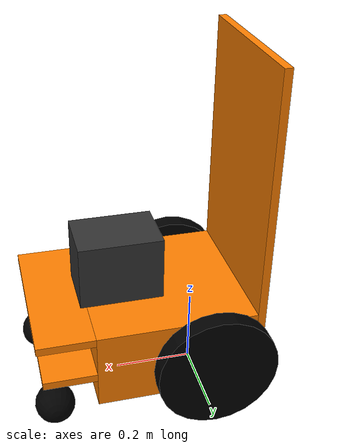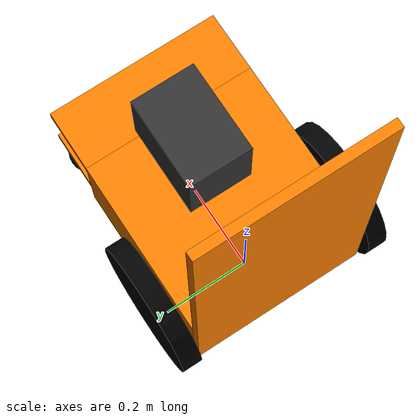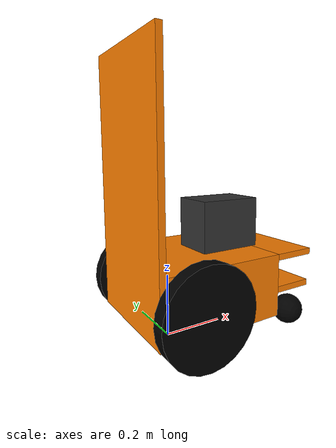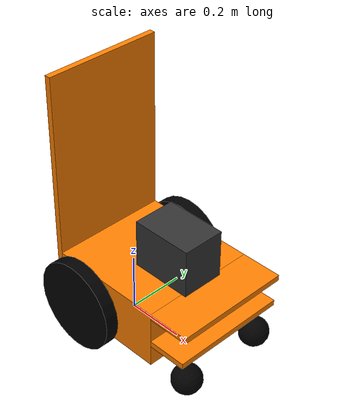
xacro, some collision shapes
<?xml version="1.0"?>
<robot name="orne_boxF" xmlns:xacro="http://www.ros.org/wiki/xacro">

  <xacro:include filename="$(find rsf_description)/urdf/material_colors.xacro"/>
  <xacro:include filename="$(find rsf_description)/urdf/links/base_link.urdf.xacro"/>
  <xacro:include filename="$(find rsf_description)/urdf/links/wheel_link.urdf.xacro"/>
  <xacro:include filename="$(find rsf_description)/urdf/links/caster_wheel_link.urdf.xacro"/>
  <xacro:include filename="$(find rsf_description)/urdf/sensors/rsf_x001.urdf.xacro"/>

  <xacro:base_link/>

  <xacro:wheel prefix="left" parent="base_link">
    <origin xyz="0 0.23075 0.152" rpy="-1.5708 0 0"/>
  </xacro:wheel>
  <xacro:wheel prefix="right" parent="base_link">
    <origin xyz="0 -0.23075 0.152" rpy="-1.5708 0 0"/>
  </xacro:wheel>

  <xacro:caster_wheel prefix="left" parent="base_link">
    <origin xyz="0.392 0.15 0.05" rpy="1.5708 0 0"/>
  </xacro:caster_wheel>
  <xacro:caster_wheel prefix="right" parent="base_link">
    <origin xyz="0.392 -0.15 0.05" rpy="1.5708 0 0"/>
  </xacro:caster_wheel>

  <xacro:sensor_rsf_x001 parent="base_link">
    <origin xyz="0.3 0 0.35" rpy="0 0 0"/>
  </xacro:sensor_rsf_x001>

</robot>

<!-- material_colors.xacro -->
<robot xmlns:xacro="http://www.ros.org/wiki/xacro">
  <material name="body_orange">
    <color rgba="1.0 0.5 0.0 1.0"/>
  </material>
  <material name="wheel_black">
    <color rgba="0.0 0.0 0.0 1.0"/>
  </material>
  <material name="sensor_dark_grey">
    <color rgba="0.2 0.2 0.2 1.0"/>
  </material>
</robot>

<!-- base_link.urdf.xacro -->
<robot xmlns:xacro="http://www.ros.org/wiki/xacro">
  <xacro:macro name="base_link">
    <link name="base_footprint"/>

    <joint name="base_footprint_joint" type="fixed">
      <parent link="base_footprint"/>
      <child link="base_link"/>
      <origin xyz="0 0 0" rpy="0 0 0"/>
    </joint>

    <link name="base_link">
      <inertial>
        <origin xyz="0.091102 0 0.176713" rpy="0 0 0"/>
        <mass value="25.4"/>
        <inertia ixx="1.22486" ixy="0" ixz="0.016878"
                 iyy="3.58311" iyz="0" izz="3.93825"/>
      </inertial>

      <collision>
        <origin xyz="0.09 0 0.1715" rpy="0 0 0"/>
        <geometry>
          <box size="0.4 0.404 0.202"/>
        </geometry>
      </collision>
      <collision>
        <origin xyz="0.36125 0 0.2625" rpy="0 0 0"/>
        <geometry>
          <box size="0.1425 0.404 0.02"/>
        </geometry>
      </collision>
      <collision>
        <origin xyz="0.35625 0 0.156" rpy="0 0 0"/>
        <geometry>
          <box size="0.1325 0.404 0.02"/>
        </geometry>
      </collision>
      <collision>
        <origin xyz="-0.12 0 0.4815" rpy="0 0 0"/>
        <geometry>
          <box size="0.02 0.404 0.822"/>
        </geometry>
      </collision>

      <visual>
        <origin xyz="0.09 0 0.1715" rpy="0 0 0"/>
        <geometry>
          <box size="0.4 0.404 0.202"/>
        </geometry>
        <material name="body_orange"/>
      </visual>
      <visual>
        <origin xyz="0.36125 0 0.2625" rpy="0 0 0"/>
        <geometry>
          <box size="0.1425 0.404 0.02"/>
        </geometry>
        <material name="body_orange"/>
      </visual>
      <visual>
        <origin xyz="0.35625 0 0.156" rpy="0 0 0"/>
        <geometry>
          <box size="0.1325 0.404 0.02"/>
        </geometry>
        <material name="body_orange"/>
      </visual>
      <visual>
        <origin xyz="-0.12 0 0.4815" rpy="0 0 0"/>
        <geometry>
          <box size="0.02 0.404 0.822"/>
        </geometry>
        <material name="body_orange"/>
      </visual>
    </link>
  </xacro:macro>
</robot>

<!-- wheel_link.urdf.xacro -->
<robot xmlns:xacro="http://www.ros.org/wiki/xacro">
  <xacro:macro name="wheel" params="prefix parent *origin">
    <joint name="${prefix}_wheel_joint" type="continuous">
      <parent link="${parent}"/>
      <child link="${prefix}_wheel_link"/>
      <xacro:insert_block name="origin"/>
      <axis xyz="0 0 1"/>
      <dynamics damping="0.05" friction="0.0"/>
    </joint>

    <link name="${prefix}_wheel_link">
      <inertial>
        <origin xyz="0 0 0" rpy="0 0 0"/>
        <mass value="0.15"/>
        <inertia ixx="0.005" ixy="0" ixz="0"
                 iyy="0.005" iyz="0" izz="0.01"/>
      </inertial>
      <collision>
        <origin xyz="0 0 0" rpy="0 0 0"/>
        <geometry>
          <cylinder length="0.045" radius="0.152"/>
        </geometry>
      </collision>
      <visual>
        <origin xyz="0 0 0" rpy="0 0 0"/>
        <geometry>
          <cylinder length="0.045" radius="0.152"/>
        </geometry>
        <material name="wheel_black"/>
      </visual>
    </link>
  </xacro:macro>
</robot>

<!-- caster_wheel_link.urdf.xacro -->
<robot xmlns:xacro="http://www.ros.org/wiki/xacro">
  <xacro:macro name="caster_wheel" params="prefix parent *origin">
    <joint name="${prefix}_caster_wheel_joint" type="fixed">
      <parent link="${parent}"/>
      <child link="${prefix}_caster_wheel_link"/>
      <xacro:insert_block name="origin"/>
    </joint>

    <link name="${prefix}_caster_wheel_link">
      <inertial>
        <origin xyz="0 0 0" rpy="0 0 0"/>
        <mass value="0.3"/>
        <inertia ixx="0.001" ixy="0" ixz="0"
                 iyy="0.001" iyz="0" izz="0.001"/>
      </inertial>
      <collision>
        <origin xyz="0 0 0" rpy="0 0 0"/>
        <geometry>
          <sphere radius="0.05"/>
        </geometry>
      </collision>
      <visual>
        <origin xyz="0 0 0" rpy="0 0 0"/>
        <geometry>
          <sphere radius="0.05"/>
        </geometry>
        <material name="wheel_black"/>
      </visual>
    </link>
  </xacro:macro>
</robot>

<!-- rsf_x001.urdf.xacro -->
<robot xmlns:xacro="http://www.ros.org/wiki/xacro">
  <xacro:macro name="sensor_rsf_x001" params="parent *origin">
    <joint name="rsf_x001_joint" type="fixed">
      <parent link="${parent}"/>
      <child link="rsf_x001_link"/>
      <xacro:insert_block name="origin"/>
    </joint>

    <link name="rsf_x001_link">
      <inertial>
        <origin xyz="-0.1 0 0.0053" rpy="0 0 0"/>
        <mass value="3.0"/>
        <inertia ixx="0.001" ixy="0" ixz="0"
                 iyy="0.001" iyz="0" izz="0.001"/>
      </inertial>

      <collision>
        <origin xyz="-0.1 0 0.0053" rpy="0 0 0"/>
        <geometry>
          <box size="0.2112 0.147 0.1656"/>
        </geometry>
      </collision>

      <visual>
        <origin xyz="-0.0296 0 -0.0775" rpy="1.5708 0 1.5708"/>
        <geometry>
          <mesh filename="package://rsf_description/meshes/RSF-X001.stl" scale="0.001 0.001 0.001"/>
        </geometry>
        <material name="sensor_dark_grey"/>
      </visual>
    </link>

    <joint name="rsf_hokuyo3d_joint" type="fixed">
      <parent link="rsf_x001_link"/>
      <child link="rsf_hokuyo3d"/>
      <origin xyz="0 0 0" rpy="0 0 0"/>
    </joint>

    <link name="rsf_hokuyo3d">
      <inertial>
        <origin xyz="0 0 0" rpy="0 0 0"/>
        <mass value="0.0001"/>
        <inertia ixx="1e-9" ixy="0" ixz="0"
                 iyy="1e-9" iyz="0" izz="1e-9"/>
      </inertial>
    </link>

    <joint name="rsf_hokuyo3d_imu_joint" type="fixed">
      <parent link="rsf_x001_link"/>
      <child link="rsf_hokuyo3d_imu"/>
      <origin xyz="-0.1 0 -0.02" rpy="0 0 0"/>
    </joint>

    <link name="rsf_hokuyo3d_imu">
      <inertial>
        <origin xyz="0 0 0" rpy="0 0 0"/>
        <mass value="0.0001"/>
        <inertia ixx="1e-9" ixy="0" ixz="0"
                 iyy="1e-9" iyz="0" izz="1e-9"/>
      </inertial>
    </link>

    <joint name="rsf_gnss_joint" type="fixed">
      <parent link="rsf_x001_link"/>
      <child link="rsf_gnss"/>
      <origin xyz="-0.1 0 0.085" rpy="0 0 0"/>
    </joint>

    <link name="rsf_gnss">
      <inertial>
        <origin xyz="0 0 0" rpy="0 0 0"/>
        <mass value="0.0001"/>
        <inertia ixx="1e-9" ixy="0" ixz="0"
                 iyy="1e-9" iyz="0" izz="1e-9"/>
      </inertial>
    </link>
  </xacro:macro>
</robot>
